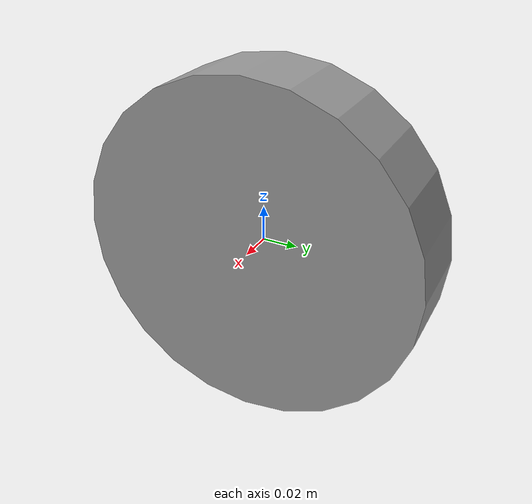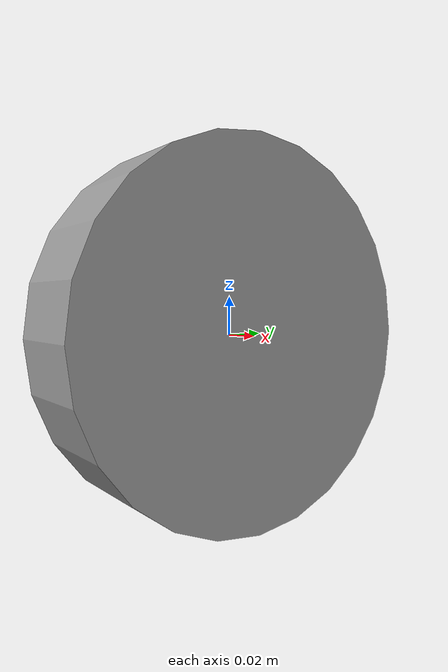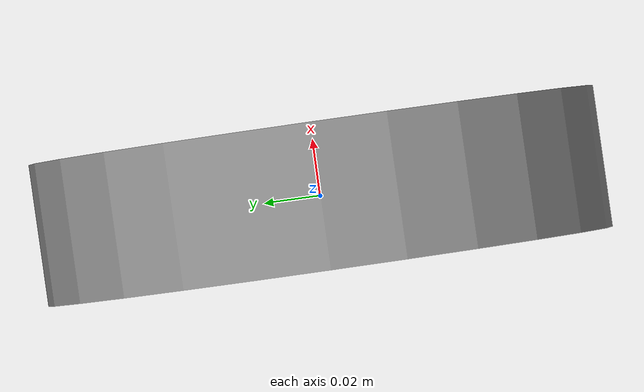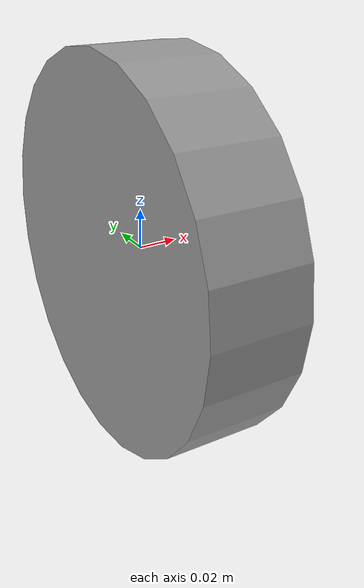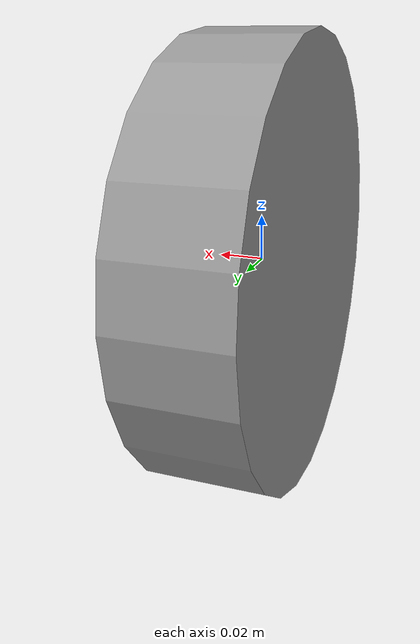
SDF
<?xml version='1.0'?>
<sdf version='1.6'>
  <model name='my_robot'>
    <link name='right_wheel'>
      <pose frame=''>0 0 0 0 1.5707 1.5707</pose>
      <mass>5</mass>
      <inertial>
        <mass>1</mass>
        <inertia>
          <ixx>0.1</ixx>
          <ixy>0</ixy>
          <ixz>0</ixz>
          <iyy>0.1</iyy>
          <iyz>0</iyz>
          <izz>0.1</izz>
        </inertia>
        <pose frame=''>0 0 0 0 -0 0</pose>
      </inertial>
      <gravity>1</gravity>
      <self_collide>0</self_collide>
      <kinematic>0</kinematic>
      <visual name='visual'>
        <pose frame=''>0 0 0 0 1.5707 1.5707</pose>
        <geometry>
          <cylinder>
            <radius>0.1</radius>
            <length>0.05</length>
          </cylinder>
        </geometry>
        <material>
          <lighting>1</lighting>
          <script>
            <uri>file://media/materials/scripts/gazebo.material</uri>
            <name>Gazebo/Grey</name>
          </script>
          <shader type='pixel'>
            <normal_map>__default__</normal_map>
          </shader>
          <ambient>0.3 0.3 0.3 1</ambient>
          <diffuse>0.7 0.7 0.7 1</diffuse>
          <specular>0.01 0.01 0.01 1</specular>
          <emissive>0 0 0 1</emissive>
        </material>
        <transparency>0</transparency>
        <cast_shadows>1</cast_shadows>
      </visual>
      <collision name='collision'>
        <laser_retro>0</laser_retro>
        <max_contacts>10</max_contacts>
        <pose frame=''>0 0 0 0 1.5707 1.5707</pose>
        <geometry>
          <cylinder>
            <radius>0.1</radius>
            <length>0.05</length>
          </cylinder>
        </geometry>
        <surface>
          <friction>
            <ode>
              <mu>1</mu>
              <mu2>1</mu2>
              <fdir1>0 0 0</fdir1>
              <slip1>0</slip1>
              <slip2>0</slip2>
            </ode>
            <torsional>
              <coefficient>1</coefficient>
              <patch_radius>0</patch_radius>
              <surface_radius>0</surface_radius>
              <use_patch_radius>1</use_patch_radius>
              <ode>
                <slip>0</slip>
              </ode>
            </torsional>
          </friction>
          <bounce>
            <restitution_coefficient>0</restitution_coefficient>
            <threshold>1e+06</threshold>
          </bounce>
          <contact>
            <collide_without_contact>0</collide_without_contact>
            <collide_without_contact_bitmask>1</collide_without_contact_bitmask>
            <collide_bitmask>1</collide_bitmask>
            <ode>
              <soft_cfm>0</soft_cfm>
              <soft_erp>0.2</soft_erp>
              <kp>1e+13</kp>
              <kd>1</kd>
              <max_vel>0.01</max_vel>
              <min_depth>0</min_depth>
            </ode>
            <bullet>
              <split_impulse>1</split_impulse>
              <split_impulse_penetration_threshold>-0.01</split_impulse_penetration_threshold>
              <soft_cfm>0</soft_cfm>
              <soft_erp>0.2</soft_erp>
              <kp>1e+13</kp>
              <kd>1</kd>
            </bullet>
          </contact>
        </surface>
      </collision>
    </link>
    <link name='left_wheel'>
      <pose frame=''>0 0 0 0 1.5707 1.5707</pose>
      <mass>5</mass>
      <inertial>
        <mass>1</mass>
        <inertia>
          <ixx>0.1</ixx>
          <ixy>0</ixy>
          <ixz>0</ixz>
          <iyy>0.1</iyy>
          <iyz>0</iyz>
          <izz>0.1</izz>
        </inertia>
        <pose frame=''>0 0 0 0 -0 0</pose>
      </inertial>
      <self_collide>0</self_collide>
      <kinematic>0</kinematic>
      <visual name='visual'>
        <pose frame=''>0 0 0 0 1.5707 1.5707</pose>
        <geometry>
          <cylinder>
            <radius>0.1</radius>
            <length>0.05</length>
          </cylinder>
        </geometry>
        <material>
          <lighting>1</lighting>
          <script>
            <uri>file://media/materials/scripts/gazebo.material</uri>
            <name>Gazebo/Grey</name>
          </script>
          <shader type='pixel'>
            <normal_map>__default__</normal_map>
          </shader>
          <ambient>0.3 0.3 0.3 1</ambient>
          <diffuse>0.7 0.7 0.7 1</diffuse>
          <specular>0.01 0.01 0.01 1</specular>
          <emissive>0 0 0 1</emissive>
        </material>
        <transparency>0</transparency>
        <cast_shadows>1</cast_shadows>
      </visual>
      <collision name='collision'>
        <laser_retro>0</laser_retro>
        <max_contacts>10</max_contacts>
        <pose frame=''>0 0 0 0 1.5707 1.5707</pose>
        <geometry>
          <cylinder>
            <radius>0.1</radius>
            <length>0.05</length>
          </cylinder>
        </geometry>
        <surface>
          <friction>
            <ode>
              <mu>1</mu>
              <mu2>1</mu2>
              <fdir1>0 0 0</fdir1>
              <slip1>0</slip1>
              <slip2>0</slip2>
            </ode>
            <torsional>
              <coefficient>1</coefficient>
              <patch_radius>0</patch_radius>
              <surface_radius>0</surface_radius>
              <use_patch_radius>1</use_patch_radius>
              <ode>
                <slip>0</slip>
              </ode>
            </torsional>
          </friction>
          <bounce>
            <restitution_coefficient>0</restitution_coefficient>
            <threshold>1e+06</threshold>
          </bounce>
          <contact>
            <collide_without_contact>0</collide_without_contact>
            <collide_without_contact_bitmask>1</collide_without_contact_bitmask>
            <collide_bitmask>1</collide_bitmask>
            <ode>
              <soft_cfm>0</soft_cfm>
              <soft_erp>0.2</soft_erp>
              <kp>1e+13</kp>
              <kd>1</kd>
              <max_vel>0.01</max_vel>
              <min_depth>0</min_depth>
            </ode>
            <bullet>
              <split_impulse>1</split_impulse>
              <split_impulse_penetration_threshold>-0.01</split_impulse_penetration_threshold>
              <soft_cfm>0</soft_cfm>
              <soft_erp>0.2</soft_erp>
              <kp>1e+13</kp>
              <kd>1</kd>
            </bullet>
          </contact>
        </surface>
      </collision>
    </link>
    <static>0</static>
    <allow_auto_disable>1</allow_auto_disable>
  </model>
</sdf>
